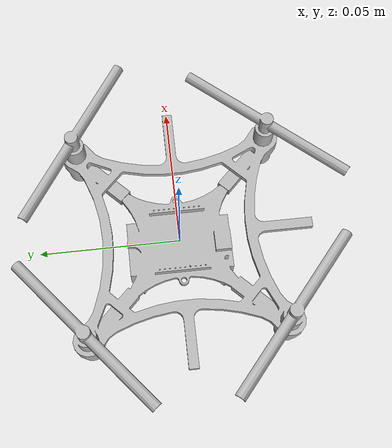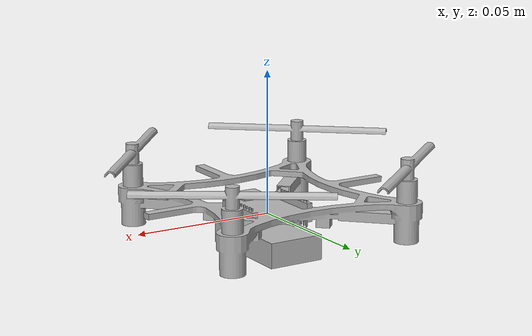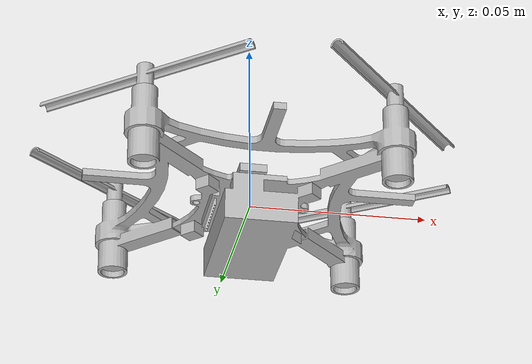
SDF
<?xml version='1.0'?>
<sdf version='1.6'>
  <model name='Crazyflie'>
    <link name='quad_body'>
      <pose frame=''>0 0 0 0 -0 0</pose>
      <inertial>
        <pose frame=''>-5e-05 -0.000526 -3.7e-05 0 -0 0</pose>
        <mass>38e-3f</mass>
        <inertia>
          <ixx>16e-6f</ixx>
          <ixy>0</ixy>
          <ixz>0</ixz>
          <iyy>16e-6f</iyy>
          <iyz>0</iyz>
          <izz>29e-6f</izz>
        </inertia>
      </inertial>
      <self_collide>0</self_collide>
      <kinematic>0</kinematic>
      <visual name='quad_body_visual'>
        <pose frame=''>0 0 0 0 -0 0</pose>
        <geometry>
          <mesh>
            <scale>1 1 1</scale>
            <uri>model://rotors_description/meshes/cf_quad_body.STL</uri>
          </mesh>
        </geometry>
        <cast_shadows>1</cast_shadows>
        <transparency>0</transparency>
        <material>
          <emissive>0 0 0 1</emissive>
        </material>
      </visual>
      <collision name='quad_body_collision'>
        <laser_retro>0</laser_retro>
        <max_contacts>10</max_contacts>
        <pose frame=''>0 0 0 0 -0 0</pose>
        <geometry>
          <mesh>
            <uri>model://rotors_description/meshes/cf_quad_body.STL</uri>
          </mesh>
        </geometry>
        <surface>
          <friction>
            <ode>
              <mu>1</mu>
              <mu2>1</mu2>
              <fdir1>0 0 0</fdir1>
              <slip1>0</slip1>
              <slip2>0</slip2>
            </ode>
            <torsional>
              <coefficient>1</coefficient>
              <patch_radius>0</patch_radius>
              <surface_radius>0</surface_radius>
              <use_patch_radius>1</use_patch_radius>
              <ode>
                <slip>0</slip>
              </ode>
            </torsional>
          </friction>
          <bounce>
            <restitution_coefficient>0</restitution_coefficient>
            <threshold>1e+06</threshold>
          </bounce>
          <contact>
            <collide_without_contact>0</collide_without_contact>
            <collide_without_contact_bitmask>1</collide_without_contact_bitmask>
            <collide_bitmask>1</collide_bitmask>
            <ode>
              <soft_cfm>0</soft_cfm>
              <soft_erp>0.2</soft_erp>
              <kp>1e+13</kp>
              <kd>1</kd>
              <max_vel>0.01</max_vel>
              <min_depth>0</min_depth>
            </ode>
            <bullet>
              <split_impulse>1</split_impulse>
              <split_impulse_penetration_threshold>-0.01</split_impulse_penetration_threshold>
              <soft_cfm>0</soft_cfm>
              <soft_erp>0.2</soft_erp>
              <kp>1e+13</kp>
              <kd>1</kd>
            </bullet>
          </contact>
        </surface>
      </collision>
    </link>
    <link name='/imu_link'>
      <pose frame=''>0 -0.003764 -0.009652 0 -0 -0.001183</pose>
      <inertial>
        <mass>1e-10</mass>
        <inertia>
          <ixx>0.000000001</ixx>
          <ixy>0</ixy>
          <ixz>0</ixz>
          <iyy>0.000000001</iyy>
          <iyz>0</iyz>
          <izz>0.000000001</izz>
        </inertia>
        <pose frame=''>0 0 0 0 -0 0</pose>
      </inertial>
      <gravity>1</gravity>
      <self_collide>0</self_collide>
      <kinematic>0</kinematic>
      <visual name='visual'>
        <pose frame=''>0 0 0 0 -0 0</pose>
        <geometry>
          <box>
            <size>0.009046 0.009017 0.007395</size>
          </box>
        </geometry>
        <material>
          <lighting>1</lighting>
          <script>
            <uri>file://media/materials/scripts/gazebo.material</uri>
            <name>Gazebo/Grey</name>
          </script>
          <ambient>0.3 0.3 0.3 1</ambient>
          <diffuse>0.7 0.7 0.7 1</diffuse>
          <specular>0.01 0.01 0.01 1</specular>
          <emissive>0 0 0 1</emissive>
          <shader type='vertex'>
            <normal_map>__default__</normal_map>
          </shader>
        </material>
        <cast_shadows>1</cast_shadows>
        <transparency>0</transparency>
      </visual>
      <collision name='collision'>
        <laser_retro>0</laser_retro>
        <max_contacts>10</max_contacts>
        <pose frame=''>0 0 0 0 -0 0</pose>
        <geometry>
          <box>
            <size>0.009046 0.009017 0.007395</size>
          </box>
        </geometry>
        <surface>
          <friction>
            <ode>
              <mu>1</mu>
              <mu2>1</mu2>
              <fdir1>0 0 0</fdir1>
              <slip1>0</slip1>
              <slip2>0</slip2>
            </ode>
            <torsional>
              <coefficient>1</coefficient>
              <patch_radius>0</patch_radius>
              <surface_radius>0</surface_radius>
              <use_patch_radius>1</use_patch_radius>
              <ode>
                <slip>0</slip>
              </ode>
            </torsional>
          </friction>
          <bounce>
            <restitution_coefficient>0</restitution_coefficient>
            <threshold>1e+06</threshold>
          </bounce>
          <contact>
            <collide_without_contact>0</collide_without_contact>
            <collide_without_contact_bitmask>1</collide_without_contact_bitmask>
            <collide_bitmask>1</collide_bitmask>
            <ode>
              <soft_cfm>0</soft_cfm>
              <soft_erp>0.2</soft_erp>
              <kp>1e+13</kp>
              <kd>1</kd>
              <max_vel>0.01</max_vel>
              <min_depth>0</min_depth>
            </ode>
            <bullet>
              <split_impulse>1</split_impulse>
              <split_impulse_penetration_threshold>-0.01</split_impulse_penetration_threshold>
              <soft_cfm>0</soft_cfm>
              <soft_erp>0.2</soft_erp>
              <kp>1e+13</kp>
              <kd>1</kd>
            </bullet>
          </contact>
        </surface>
      </collision>
    </link>
    <link name='prop_3'>
      <pose frame=''>0.03415 0.03415 0.015 0 -0 2.55307</pose>
      <inertial>
        <pose frame=''>0 0 0 0 -0 0</pose>
        <mass>2.5e-3</mass>
        <inertia>
          <ixx>7.5e-10</ixx>
          <ixy>0</ixy>
          <ixz>0</ixz>
          <iyy>38.6e-9</iyy>
          <iyz>0</iyz>
          <izz>39.05e-9</izz>
        </inertia>
      </inertial>
      <self_collide>0</self_collide>
      <kinematic>0</kinematic>
      <visual name='prop_3_visual'>
        <pose frame=''>0 0 0 0 -0 0</pose>
        <geometry>
          <mesh>
            <scale>1 1 1</scale>
            <uri>model://rotors_description/meshes/cf_prop3.STL</uri>
          </mesh>
        </geometry>
        <cast_shadows>1</cast_shadows>
        <transparency>0</transparency>
      </visual>
      <collision name='prop_3_collision'>
        <laser_retro>0</laser_retro>
        <max_contacts>10</max_contacts>
        <pose frame=''>0 0 0 0 -0 0</pose>
        <geometry>
          <mesh>
            <uri>model://rotors_description/meshes/cf_prop3.STL</uri>
          </mesh>
        </geometry>
        <surface>
          <friction>
            <ode>
              <mu>1</mu>
              <mu2>1</mu2>
              <fdir1>0 0 0</fdir1>
              <slip1>0</slip1>
              <slip2>0</slip2>
            </ode>
            <torsional>
              <coefficient>1</coefficient>
              <patch_radius>0</patch_radius>
              <surface_radius>0</surface_radius>
              <use_patch_radius>1</use_patch_radius>
              <ode>
                <slip>0</slip>
              </ode>
            </torsional>
          </friction>
          <bounce>
            <restitution_coefficient>0</restitution_coefficient>
            <threshold>1e+06</threshold>
          </bounce>
          <contact>
            <collide_without_contact>0</collide_without_contact>
            <collide_without_contact_bitmask>1</collide_without_contact_bitmask>
            <collide_bitmask>1</collide_bitmask>
            <ode>
              <soft_cfm>0</soft_cfm>
              <soft_erp>0.2</soft_erp>
              <kp>1e+13</kp>
              <kd>1</kd>
              <max_vel>0.01</max_vel>
              <min_depth>0</min_depth>
            </ode>
            <bullet>
              <split_impulse>1</split_impulse>
              <split_impulse_penetration_threshold>-0.01</split_impulse_penetration_threshold>
              <soft_cfm>0</soft_cfm>
              <soft_erp>0.2</soft_erp>
              <kp>1e+13</kp>
              <kd>1</kd>
            </bullet>
          </contact>
        </surface>
      </collision>
    </link>
    <link name='prop_0'>
      <pose frame=''>0.03415 -0.03415 0.015 0 -0 0</pose>
      <inertial>
        <pose frame=''>0 0 0 0 -0 0</pose>
        <mass>2.5e-3</mass>
        <inertia>
          <ixx>7.5e-10</ixx>
          <ixy>0</ixy>
          <ixz>0</ixz>
          <iyy>38.6e-9</iyy>
          <iyz>0</iyz>
          <izz>39.05e-9</izz>
        </inertia>
      </inertial>
      <self_collide>0</self_collide>
      <kinematic>0</kinematic>
      <visual name='prop_0_visual'>
        <pose frame=''>0 0 0 0 -0 0</pose>
        <geometry>
          <mesh>
            <scale>1 1 1</scale>
            <uri>model://rotors_description/meshes/cf_prop0.STL</uri>
          </mesh>
        </geometry>
        <cast_shadows>1</cast_shadows>
        <transparency>0</transparency>
        <material>
          <emissive>0 0 0 1</emissive>
        </material>
      </visual>
      <collision name='prop_0_collision'>
        <laser_retro>0</laser_retro>
        <max_contacts>10</max_contacts>
        <pose frame=''>0 0 0 0 -0 0</pose>
        <geometry>
          <mesh>
            <uri>model://rotors_description/meshes/cf_prop0.STL</uri>
          </mesh>
        </geometry>
        <surface>
          <friction>
            <ode>
              <mu>1</mu>
              <mu2>1</mu2>
              <fdir1>0 0 0</fdir1>
              <slip1>0</slip1>
              <slip2>0</slip2>
            </ode>
            <torsional>
              <coefficient>1</coefficient>
              <patch_radius>0</patch_radius>
              <surface_radius>0</surface_radius>
              <use_patch_radius>1</use_patch_radius>
              <ode>
                <slip>0</slip>
              </ode>
            </torsional>
          </friction>
          <bounce>
            <restitution_coefficient>0</restitution_coefficient>
            <threshold>1e+06</threshold>
          </bounce>
          <contact>
            <collide_without_contact>0</collide_without_contact>
            <collide_without_contact_bitmask>1</collide_without_contact_bitmask>
            <collide_bitmask>1</collide_bitmask>
            <ode>
              <soft_cfm>0</soft_cfm>
              <soft_erp>0.2</soft_erp>
              <kp>1e+13</kp>
              <kd>1</kd>
              <max_vel>0.01</max_vel>
              <min_depth>0</min_depth>
            </ode>
            <bullet>
              <split_impulse>1</split_impulse>
              <split_impulse_penetration_threshold>-0.01</split_impulse_penetration_threshold>
              <soft_cfm>0</soft_cfm>
              <soft_erp>0.2</soft_erp>
              <kp>1e+13</kp>
              <kd>1</kd>
            </bullet>
          </contact>
        </surface>
      </collision>
    </link>
    <link name='prop_1'>
      <pose frame=''>-0.03415 -0.03415 0.015 0 -0 0</pose>
      <inertial>
        <pose frame=''>0 0 0 0 -0 0</pose>
        <mass>2.5e-3</mass>
        <inertia>
          <ixx>7.5e-10</ixx>
          <ixy>0</ixy>
          <ixz>0</ixz>
          <iyy>38.6e-9</iyy>
          <iyz>0</iyz>
          <izz>39.05e-9</izz>
        </inertia>
      </inertial>
      <self_collide>0</self_collide>
      <kinematic>0</kinematic>
      <visual name='prop_1_visual'>
        <pose frame=''>0 0 0 0 -0 0</pose>
        <geometry>
          <mesh>
            <scale>1 1 1</scale>
            <uri>model://rotors_description/meshes/cf_prop1.STL</uri>
          </mesh>
        </geometry>
        <cast_shadows>1</cast_shadows>
        <transparency>0</transparency>
      </visual>
      <collision name='prop_1_collision'>
        <laser_retro>0</laser_retro>
        <max_contacts>10</max_contacts>
        <pose frame=''>0 0 0 0 -0 0</pose>
        <geometry>
          <mesh>
            <uri>model://rotors_description/meshes/cf_prop1.STL</uri>
          </mesh>
        </geometry>
        <surface>
          <friction>
            <ode>
              <mu>1</mu>
              <mu2>1</mu2>
              <fdir1>0 0 0</fdir1>
              <slip1>0</slip1>
              <slip2>0</slip2>
            </ode>
            <torsional>
              <coefficient>1</coefficient>
              <patch_radius>0</patch_radius>
              <surface_radius>0</surface_radius>
              <use_patch_radius>1</use_patch_radius>
              <ode>
                <slip>0</slip>
              </ode>
            </torsional>
          </friction>
          <bounce>
            <restitution_coefficient>0</restitution_coefficient>
            <threshold>1e+06</threshold>
          </bounce>
          <contact>
            <collide_without_contact>0</collide_without_contact>
            <collide_without_contact_bitmask>1</collide_without_contact_bitmask>
            <collide_bitmask>1</collide_bitmask>
            <ode>
              <soft_cfm>0</soft_cfm>
              <soft_erp>0.2</soft_erp>
              <kp>1e+13</kp>
              <kd>1</kd>
              <max_vel>0.01</max_vel>
              <min_depth>0</min_depth>
            </ode>
            <bullet>
              <split_impulse>1</split_impulse>
              <split_impulse_penetration_threshold>-0.01</split_impulse_penetration_threshold>
              <soft_cfm>0</soft_cfm>
              <soft_erp>0.2</soft_erp>
              <kp>1e+13</kp>
              <kd>1</kd>
            </bullet>
          </contact>
        </surface>
      </collision>
    </link>
    <link name='prop_2'>
      <pose frame=''>-0.03415 0.03415 0.015 0 -0 0</pose>
      <inertial>
        <pose frame=''>0 0 0 0 -0 0</pose>
        <mass>2.5e-3</mass>
        <inertia>
          <ixx>7.5e-10</ixx>
          <ixy>0</ixy>
          <ixz>0</ixz>
          <iyy>38.6e-9</iyy>
          <iyz>0</iyz>
          <izz>39.05e-9</izz>
        </inertia>
      </inertial>
      <self_collide>0</self_collide>
      <kinematic>0</kinematic>
      <visual name='prop_2_visual'>
        <pose frame=''>0 0 0 0 -0 0</pose>
        <geometry>
          <mesh>
            <scale>1 1 1</scale>
            <uri>model://rotors_description/meshes/cf_prop2.STL</uri>
          </mesh>
        </geometry>
        <cast_shadows>1</cast_shadows>
        <transparency>0</transparency>
        <material>
          <emissive>0 0 0 1</emissive>
        </material>
      </visual>
      <collision name='prop_2_collision'>
        <laser_retro>0</laser_retro>
        <max_contacts>10</max_contacts>
        <pose frame=''>0 0 0 0 -0 0</pose>
        <geometry>
          <mesh>
            <uri>model://rotors_description/meshes/cf_prop2.STL</uri>
          </mesh>
        </geometry>
        <surface>
          <friction>
            <ode>
              <mu>1</mu>
              <mu2>1</mu2>
              <fdir1>0 0 0</fdir1>
              <slip1>0</slip1>
              <slip2>0</slip2>
            </ode>
            <torsional>
              <coefficient>1</coefficient>
              <patch_radius>0</patch_radius>
              <surface_radius>0</surface_radius>
              <use_patch_radius>1</use_patch_radius>
              <ode>
                <slip>0</slip>
              </ode>
            </torsional>
          </friction>
          <bounce>
            <restitution_coefficient>0</restitution_coefficient>
            <threshold>1e+06</threshold>
          </bounce>
          <contact>
            <collide_without_contact>0</collide_without_contact>
            <collide_without_contact_bitmask>1</collide_without_contact_bitmask>
            <collide_bitmask>1</collide_bitmask>
            <ode>
              <soft_cfm>0</soft_cfm>
              <soft_erp>0.2</soft_erp>
              <kp>1e+13</kp>
              <kd>1</kd>
              <max_vel>0.01</max_vel>
              <min_depth>0</min_depth>
            </ode>
            <bullet>
              <split_impulse>1</split_impulse>
              <split_impulse_penetration_threshold>-0.01</split_impulse_penetration_threshold>
              <soft_cfm>0</soft_cfm>
              <soft_erp>0.2</soft_erp>
              <kp>1e+13</kp>
              <kd>1</kd>
            </bullet>
          </contact>
        </surface>
      </collision>
    </link>
    <joint name='prop3' type='revolute'>
      <parent>quad_body</parent>
      <child>prop_3</child>
      <pose frame=''>0 0 0 0 -0 0</pose>
      <axis>
        <xyz>0 0 1</xyz>
        <use_parent_model_frame>1</use_parent_model_frame>
        <limit>
          <lower>-1e+16</lower>
          <upper>1e+16</upper>
          <effort>-1</effort>
          <velocity>-1</velocity>
        </limit>
        <dynamics>
          <spring_reference>0</spring_reference>
          <spring_stiffness>0</spring_stiffness>
          <damping>0</damping>
          <friction>0</friction>
        </dynamics>
      </axis>
      <physics>
        <ode>
          <limit>
            <cfm>0</cfm>
            <erp>0.2</erp>
          </limit>
          <suspension>
            <cfm>0</cfm>
            <erp>0.2</erp>
          </suspension>
        </ode>
      </physics>
    </joint>
    <joint name='prop0' type='revolute'>
      <parent>quad_body</parent>
      <child>prop_0</child>
      <pose frame=''>0 0 0 0 -0 0</pose>
      <axis>
        <xyz>0 0 1</xyz>
        <use_parent_model_frame>1</use_parent_model_frame>
        <limit>
          <lower>-1e+16</lower>
          <upper>1e+16</upper>
          <effort>-1</effort>
          <velocity>-1</velocity>
        </limit>
        <dynamics>
          <spring_reference>0</spring_reference>
          <spring_stiffness>0</spring_stiffness>
          <damping>0</damping>
          <friction>0</friction>
        </dynamics>
      </axis>
      <physics>
        <ode>
          <limit>
            <cfm>0</cfm>
            <erp>0.2</erp>
          </limit>
          <suspension>
            <cfm>0</cfm>
            <erp>0.2</erp>
          </suspension>
        </ode>
      </physics>
    </joint>
    <joint name='prop1' type='revolute'>
      <parent>quad_body</parent>
      <child>prop_1</child>
      <pose frame=''>0 0 0 0 -0 0</pose>
      <axis>
        <xyz>0 0 1</xyz>
        <use_parent_model_frame>1</use_parent_model_frame>
        <limit>
          <lower>-1e+16</lower>
          <upper>1e+16</upper>
          <effort>-1</effort>
          <velocity>-1</velocity>
        </limit>
        <dynamics>
          <spring_reference>0</spring_reference>
          <spring_stiffness>0</spring_stiffness>
          <damping>0</damping>
          <friction>0</friction>
        </dynamics>
      </axis>
      <physics>
        <ode>
          <limit>
            <cfm>0</cfm>
            <erp>0.2</erp>
          </limit>
          <suspension>
            <cfm>0</cfm>
            <erp>0.2</erp>
          </suspension>
        </ode>
      </physics>
    </joint>
    <joint name='prop2' type='revolute'>
      <parent>quad_body</parent>
      <child>prop_2</child>
      <pose frame=''>0 0 0 0 -0 0</pose>
      <axis>
        <xyz>0 0 1</xyz>
        <use_parent_model_frame>1</use_parent_model_frame>
        <limit>
          <lower>-1e+16</lower>
          <upper>1e+16</upper>
          <effort>-1</effort>
          <velocity>-1</velocity>
        </limit>
        <dynamics>
          <spring_reference>0</spring_reference>
          <spring_stiffness>0</spring_stiffness>
          <damping>0</damping>
          <friction>0</friction>
        </dynamics>
      </axis>
      <physics>
        <ode>
          <limit>
            <cfm>0</cfm>
            <erp>0.2</erp>
          </limit>
          <suspension>
            <cfm>0</cfm>
            <erp>0.2</erp>
          </suspension>
        </ode>
      </physics>
    </joint>
    <joint name='/imu_joint' type='fixed'>
      <parent>quad_body</parent>
      <child>/imu_link</child>
      <pose frame=''>0 0 0 0 -0 0</pose>
      <physics>
        <ode>
          <limit>
            <cfm>0</cfm>
            <erp>0.2</erp>
          </limit>
          <suspension>
            <cfm>0</cfm>
            <erp>0.2</erp>
          </suspension>
        </ode>
      </physics>
    </joint>
    <static>0</static>
    <allow_auto_disable>1</allow_auto_disable>
    <plugin name='back_left_motor_model' filename='libgazebo_motor_model.so'>
      <robotNamespace/>
      <jointName>prop2</jointName>
      <linkName>prop_2</linkName>
      <turningDirection>ccw</turningDirection>
      <timeConstantUp>0.0125</timeConstantUp>
      <timeConstantDown>0.025</timeConstantDown>
      <maxRotVelocity>2482.56</maxRotVelocity>
      <motorConstant>3.58e-8</motorConstant>
      <momentConstant>0.0006</momentConstant>
      <commandSubTopic>/gazebo/command/motor_speed</commandSubTopic>
      <motorNumber>2</motorNumber>
      <rotorDragCoefficient>1e-12</rotorDragCoefficient>
      <rollingMomentCoefficient>1e-12</rollingMomentCoefficient>
      <motorSpeedPubTopic>/motor_speed/2</motorSpeedPubTopic>
      <rotorVelocitySlowdownSim>10</rotorVelocitySlowdownSim>
    </plugin>
    <plugin name='back_right_motor_model' filename='libgazebo_motor_model.so'>
      <robotNamespace/>
      <jointName>prop1</jointName>
      <linkName>prop_1</linkName>
      <turningDirection>cw</turningDirection>
      <timeConstantUp>0.0125</timeConstantUp>
      <timeConstantDown>0.025</timeConstantDown>
      <maxRotVelocity>2482.56</maxRotVelocity>
      <motorConstant>3.58e-8</motorConstant>
      <momentConstant>0.0006</momentConstant>
      <commandSubTopic>/gazebo/command/motor_speed</commandSubTopic>
      <motorNumber>1</motorNumber>
      <rotorDragCoefficient>1e-12</rotorDragCoefficient>
      <rollingMomentCoefficient>1e-12</rollingMomentCoefficient>
      <motorSpeedPubTopic>/motor_speed/1</motorSpeedPubTopic>
      <rotorVelocitySlowdownSim>10</rotorVelocitySlowdownSim>
    </plugin>
    <plugin name='front_left_motor_model' filename='libgazebo_motor_model.so'>
      <robotNamespace/>
      <jointName>prop3</jointName>
      <linkName>prop_3</linkName>
      <turningDirection>cw</turningDirection>
      <timeConstantUp>0.0125</timeConstantUp>
      <timeConstantDown>0.025</timeConstantDown>
      <maxRotVelocity>2482.56</maxRotVelocity>
      <motorConstant>3.58e-8</motorConstant>
      <momentConstant>0.0006</momentConstant>
      <commandSubTopic>/gazebo/command/motor_speed</commandSubTopic>
      <motorNumber>3</motorNumber>
      <rotorDragCoefficient>1e-12</rotorDragCoefficient>
      <rollingMomentCoefficient>1e-12</rollingMomentCoefficient>
      <motorSpeedPubTopic>/motor_speed/3</motorSpeedPubTopic>
      <rotorVelocitySlowdownSim>10</rotorVelocitySlowdownSim>
    </plugin>
    <plugin name='front_right_motor_model' filename='libgazebo_motor_model.so'>
      <robotNamespace/>
      <jointName>prop0</jointName>
      <linkName>prop_0</linkName>
      <turningDirection>ccw</turningDirection>
      <timeConstantUp>0.0125</timeConstantUp>
      <timeConstantDown>0.025</timeConstantDown>
      <maxRotVelocity>2482.56</maxRotVelocity>
      <motorConstant>3.58e-8</motorConstant>
      <momentConstant>0.0006</momentConstant>
      <commandSubTopic>/gazebo/command/motor_speed</commandSubTopic>
      <motorNumber>0</motorNumber>
      <rotorDragCoefficient>1e-12</rotorDragCoefficient>
      <rollingMomentCoefficient>1e-12</rollingMomentCoefficient>
      <motorSpeedPubTopic>/motor_speed/0</motorSpeedPubTopic>
      <rotorVelocitySlowdownSim>10</rotorVelocitySlowdownSim>
    </plugin>
    <plugin name='ros_interface' filename='libgazebo_ros_interface.so'>
      <numberOfRotors>4</numberOfRotors>
      <robotNamespace>/</robotNamespace>
    </plugin>
    <plugin name='rotors_gazebo_imu_plugin' filename='libgazebo_imu_plugin.so'>
      <robotNamespace/>
      <linkName>/imu_link</linkName>
      <imuTopic>/imu</imuTopic>
      <gyroscopeNoiseDensity>0.0003394</gyroscopeNoiseDensity>
      <gyroscopeRandomWalk>3.8785e-05</gyroscopeRandomWalk>
      <gyroscopeBiasCorrelationTime>1000.0</gyroscopeBiasCorrelationTime>
      <gyroscopeTurnOnBiasSigma>0.0087</gyroscopeTurnOnBiasSigma>
      <accelerometerNoiseDensity>0.004</accelerometerNoiseDensity>
      <accelerometerRandomWalk>0.006</accelerometerRandomWalk>
      <accelerometerBiasCorrelationTime>300.0</accelerometerBiasCorrelationTime>
      <accelerometerTurnOnBiasSigma>0.196</accelerometerTurnOnBiasSigma>
    </plugin>
  </model>
</sdf>
